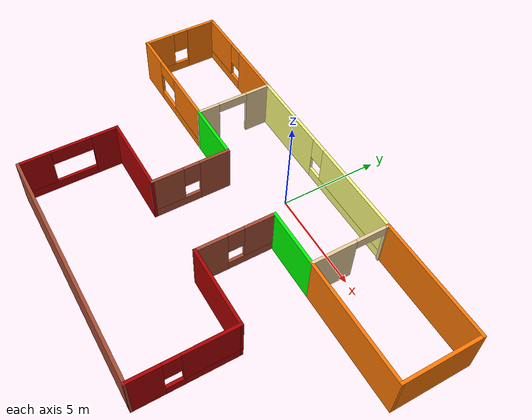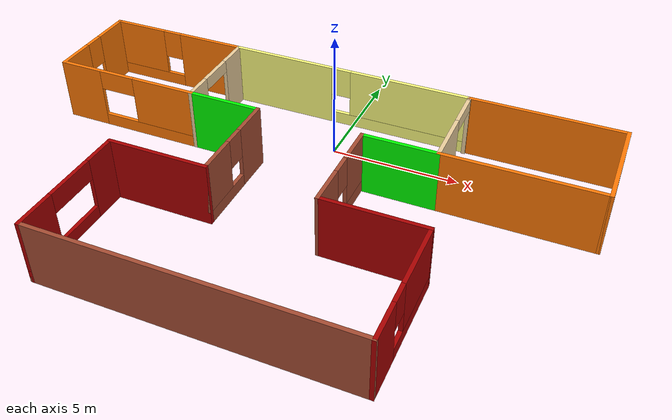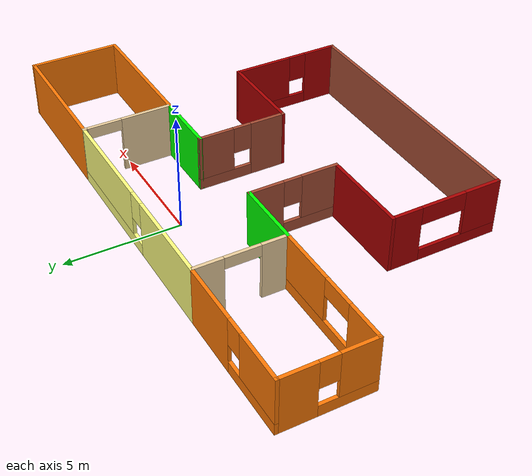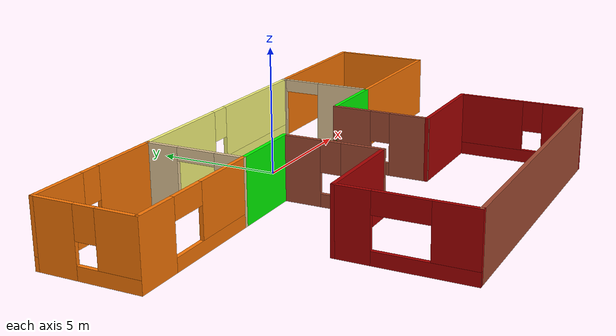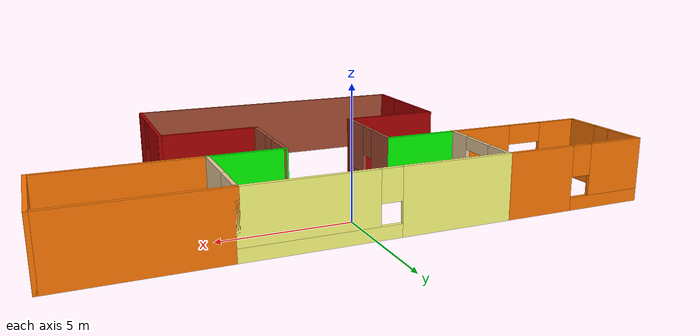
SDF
<?xml version='1.0'?>
<sdf version='1.6'>
  <model name='projectbuilding'>
    <pose frame=''>-0.250463 -4.25071 0 0 -0 0</pose>
    <link name='Wall_0'>
      <pose frame=''>0 6.2751 0 0 -0 0</pose>
      <visual name='Wall_0_Visual_0'>
        <pose frame=''>-2.85668 0 1.25 0 -0 0</pose>
        <geometry>
          <box>
            <size>4.28664 0.15 2.5</size>
          </box>
        </geometry>
        <material>
          <script>
            <uri>file://media/materials/scripts/gazebo.material</uri>
            <name>Gazebo/Grey</name>
          </script>
          <ambient>1 1 0.498039 1</ambient>
        </material>
        <meta>
          <layer>0</layer>
        </meta>
      </visual>
      <collision name='Wall_0_Collision_0'>
        <geometry>
          <box>
            <size>4.28664 0.15 2.5</size>
          </box>
        </geometry>
        <pose frame=''>-2.85668 0 1.25 0 -0 0</pose>
      </collision>
      <visual name='Wall_0_Visual_1'>
        <pose frame=''>2.14332 0 0.25 0 -0 0</pose>
        <geometry>
          <box>
            <size>5.71336 0.15 0.5</size>
          </box>
        </geometry>
        <material>
          <script>
            <uri>file://media/materials/scripts/gazebo.material</uri>
            <name>Gazebo/Grey</name>
          </script>
          <ambient>1 1 0.498039 1</ambient>
        </material>
        <meta>
          <layer>0</layer>
        </meta>
      </visual>
      <collision name='Wall_0_Collision_1'>
        <geometry>
          <box>
            <size>5.71336 0.15 0.5</size>
          </box>
        </geometry>
        <pose frame=''>2.14332 0 0.25 0 -0 0</pose>
      </collision>
      <visual name='Wall_0_Visual_2'>
        <pose frame=''>2.54332 0 1.5 0 -0 0</pose>
        <geometry>
          <box>
            <size>4.91336 0.15 2</size>
          </box>
        </geometry>
        <material>
          <script>
            <uri>file://media/materials/scripts/gazebo.material</uri>
            <name>Gazebo/Grey</name>
          </script>
          <ambient>1 1 0.498039 1</ambient>
        </material>
        <meta>
          <layer>0</layer>
        </meta>
      </visual>
      <collision name='Wall_0_Collision_2'>
        <geometry>
          <box>
            <size>4.91336 0.15 2</size>
          </box>
        </geometry>
        <pose frame=''>2.54332 0 1.5 0 -0 0</pose>
      </collision>
      <visual name='Wall_0_Visual_3'>
        <pose frame=''>-0.31336 0 1.9 0 -0 0</pose>
        <geometry>
          <box>
            <size>0.8 0.15 1.2</size>
          </box>
        </geometry>
        <material>
          <script>
            <uri>file://media/materials/scripts/gazebo.material</uri>
            <name>Gazebo/Grey</name>
          </script>
          <ambient>1 1 0.498039 1</ambient>
        </material>
        <meta>
          <layer>0</layer>
        </meta>
      </visual>
      <collision name='Wall_0_Collision_3'>
        <geometry>
          <box>
            <size>0.8 0.15 1.2</size>
          </box>
        </geometry>
        <pose frame=''>-0.31336 0 1.9 0 -0 0</pose>
      </collision>
    </link>
    <link name='Wall_16'>
      <pose frame=''>-4.925 4.3501 0 0 0 -1.5708</pose>
      <visual name='Wall_16_Visual_0'>
        <pose frame=''>-1.33475 0 1.25 0 -0 0</pose>
        <geometry>
          <box>
            <size>1.33049 0.15 2.5</size>
          </box>
        </geometry>
        <material>
          <script>
            <uri>file://media/materials/scripts/gazebo.material</uri>
            <name>Gazebo/Grey</name>
          </script>
          <ambient>0.921569 0.807843 0.615686 1</ambient>
        </material>
        <meta>
          <layer>0</layer>
        </meta>
      </visual>
      <collision name='Wall_16_Collision_0'>
        <geometry>
          <box>
            <size>1.33049 0.15 2.5</size>
          </box>
        </geometry>
        <pose frame=''>-1.33475 0 1.25 0 -0 0</pose>
      </collision>
      <visual name='Wall_16_Visual_1'>
        <pose frame=''>1.41525 0 1.25 0 -0 0</pose>
        <geometry>
          <box>
            <size>1.16951 0.15 2.5</size>
          </box>
        </geometry>
        <material>
          <script>
            <uri>file://media/materials/scripts/gazebo.material</uri>
            <name>Gazebo/Grey</name>
          </script>
          <ambient>0.921569 0.807843 0.615686 1</ambient>
        </material>
        <meta>
          <layer>0</layer>
        </meta>
      </visual>
      <collision name='Wall_16_Collision_1'>
        <geometry>
          <box>
            <size>1.16951 0.15 2.5</size>
          </box>
        </geometry>
        <pose frame=''>1.41525 0 1.25 0 -0 0</pose>
      </collision>
      <visual name='Wall_16_Visual_2'>
        <pose frame=''>0.080495 0 2.25 0 -0 0</pose>
        <geometry>
          <box>
            <size>1.5 0.15 0.5</size>
          </box>
        </geometry>
        <material>
          <script>
            <uri>file://media/materials/scripts/gazebo.material</uri>
            <name>Gazebo/Grey</name>
          </script>
          <ambient>0.921569 0.807843 0.615686 1</ambient>
        </material>
        <meta>
          <layer>0</layer>
        </meta>
      </visual>
      <collision name='Wall_16_Collision_2'>
        <geometry>
          <box>
            <size>1.5 0.15 0.5</size>
          </box>
        </geometry>
        <pose frame=''>0.080495 0 2.25 0 -0 0</pose>
      </collision>
    </link>
    <link name='Wall_17'>
      <collision name='Wall_17_Collision'>
        <geometry>
          <box>
            <size>3 0.15 2.5</size>
          </box>
        </geometry>
        <pose frame=''>0 0 1.25 0 -0 0</pose>
      </collision>
      <visual name='Wall_17_Visual'>
        <pose frame=''>0 0 1.25 0 -0 0</pose>
        <geometry>
          <box>
            <size>3 0.15 2.5</size>
          </box>
        </geometry>
        <material>
          <script>
            <uri>file://media/materials/scripts/gazebo.material</uri>
            <name>Gazebo/Grey</name>
          </script>
          <ambient>0 1 0 1</ambient>
        </material>
        <meta>
          <layer>0</layer>
        </meta>
      </visual>
      <pose frame=''>-3.5 2.4251 0 0 -0 0</pose>
    </link>
    <link name='Wall_19'>
      <pose frame=''>4.925 4.3501 0 0 0 -1.5708</pose>
      <visual name='Wall_19_Visual_0'>
        <pose frame=''>-1.89121 0 1.25 0 -0 0</pose>
        <geometry>
          <box>
            <size>0.217577 0.15 2.5</size>
          </box>
        </geometry>
        <material>
          <script>
            <uri>file://media/materials/scripts/gazebo.material</uri>
            <name>Gazebo/Grey</name>
          </script>
          <ambient>0.921569 0.807843 0.615686 1</ambient>
        </material>
        <meta>
          <layer>0</layer>
        </meta>
      </visual>
      <collision name='Wall_19_Collision_0'>
        <geometry>
          <box>
            <size>0.217577 0.15 2.5</size>
          </box>
        </geometry>
        <pose frame=''>-1.89121 0 1.25 0 -0 0</pose>
      </collision>
      <visual name='Wall_19_Visual_1'>
        <pose frame=''>0.858788 0 1.25 0 -0 0</pose>
        <geometry>
          <box>
            <size>2.28242 0.15 2.5</size>
          </box>
        </geometry>
        <material>
          <script>
            <uri>file://media/materials/scripts/gazebo.material</uri>
            <name>Gazebo/Grey</name>
          </script>
          <ambient>0.921569 0.807843 0.615686 1</ambient>
        </material>
        <meta>
          <layer>0</layer>
        </meta>
      </visual>
      <collision name='Wall_19_Collision_1'>
        <geometry>
          <box>
            <size>2.28242 0.15 2.5</size>
          </box>
        </geometry>
        <pose frame=''>0.858788 0 1.25 0 -0 0</pose>
      </collision>
      <visual name='Wall_19_Visual_2'>
        <pose frame=''>-1.03242 0 2.25 0 -0 0</pose>
        <geometry>
          <box>
            <size>1.5 0.15 0.5</size>
          </box>
        </geometry>
        <material>
          <script>
            <uri>file://media/materials/scripts/gazebo.material</uri>
            <name>Gazebo/Grey</name>
          </script>
          <ambient>0.921569 0.807843 0.615686 1</ambient>
        </material>
        <meta>
          <layer>0</layer>
        </meta>
      </visual>
      <collision name='Wall_19_Collision_2'>
        <geometry>
          <box>
            <size>1.5 0.15 0.5</size>
          </box>
        </geometry>
        <pose frame=''>-1.03242 0 2.25 0 -0 0</pose>
      </collision>
    </link>
    <link name='Wall_20'>
      <collision name='Wall_20_Collision'>
        <geometry>
          <box>
            <size>3 0.15 2.5</size>
          </box>
        </geometry>
        <pose frame=''>0 0 1.25 0 -0 0</pose>
      </collision>
      <visual name='Wall_20_Visual'>
        <pose frame=''>0 0 1.25 0 -0 0</pose>
        <geometry>
          <box>
            <size>3 0.15 2.5</size>
          </box>
        </geometry>
        <material>
          <script>
            <uri>file://media/materials/scripts/gazebo.material</uri>
            <name>Gazebo/Grey</name>
          </script>
          <ambient>0 1 0 1</ambient>
        </material>
        <meta>
          <layer>0</layer>
        </meta>
      </visual>
      <pose frame=''>3.5 2.4251 0 0 -0 3.14159</pose>
    </link>
    <link name='Wall_44'>
      <pose frame=''>-2.075 0.5001 0 0 0 -1.5708</pose>
      <visual name='Wall_44_Visual_0'>
        <pose frame=''>-1.22523 0 1.25 0 -0 0</pose>
        <geometry>
          <box>
            <size>1.54953 0.15 2.5</size>
          </box>
        </geometry>
        <material>
          <script>
            <uri>file://media/materials/scripts/gazebo.material</uri>
            <name>Gazebo/Bricks</name>
          </script>
          <ambient>0 0.333333 0 1</ambient>
        </material>
        <meta>
          <layer>0</layer>
        </meta>
      </visual>
      <collision name='Wall_44_Collision_0'>
        <geometry>
          <box>
            <size>1.54953 0.15 2.5</size>
          </box>
        </geometry>
        <pose frame=''>-1.22523 0 1.25 0 -0 0</pose>
      </collision>
      <visual name='Wall_44_Visual_1'>
        <pose frame=''>0.774766 0 0.25 0 -0 0</pose>
        <geometry>
          <box>
            <size>2.45047 0.15 0.5</size>
          </box>
        </geometry>
        <material>
          <script>
            <uri>file://media/materials/scripts/gazebo.material</uri>
            <name>Gazebo/Bricks</name>
          </script>
          <ambient>0 0.333333 0 1</ambient>
        </material>
        <meta>
          <layer>0</layer>
        </meta>
      </visual>
      <collision name='Wall_44_Collision_1'>
        <geometry>
          <box>
            <size>2.45047 0.15 0.5</size>
          </box>
        </geometry>
        <pose frame=''>0.774766 0 0.25 0 -0 0</pose>
      </collision>
      <visual name='Wall_44_Visual_2'>
        <pose frame=''>1.17477 0 1.5 0 -0 0</pose>
        <geometry>
          <box>
            <size>1.65047 0.15 2</size>
          </box>
        </geometry>
        <material>
          <script>
            <uri>file://media/materials/scripts/gazebo.material</uri>
            <name>Gazebo/Bricks</name>
          </script>
          <ambient>0 0.333333 0 1</ambient>
        </material>
        <meta>
          <layer>0</layer>
        </meta>
      </visual>
      <collision name='Wall_44_Collision_2'>
        <geometry>
          <box>
            <size>1.65047 0.15 2</size>
          </box>
        </geometry>
        <pose frame=''>1.17477 0 1.5 0 -0 0</pose>
      </collision>
      <visual name='Wall_44_Visual_3'>
        <pose frame=''>-0.050468 0 1.9 0 -0 0</pose>
        <geometry>
          <box>
            <size>0.8 0.15 1.2</size>
          </box>
        </geometry>
        <material>
          <script>
            <uri>file://media/materials/scripts/gazebo.material</uri>
            <name>Gazebo/Bricks</name>
          </script>
          <ambient>0 0.333333 0 1</ambient>
        </material>
        <meta>
          <layer>0</layer>
        </meta>
      </visual>
      <collision name='Wall_44_Collision_3'>
        <geometry>
          <box>
            <size>0.8 0.15 1.2</size>
          </box>
        </geometry>
        <pose frame=''>-0.050468 0 1.9 0 -0 0</pose>
      </collision>
    </link>
    <link name='Wall_45'>
      <collision name='Wall_45_Collision'>
        <geometry>
          <box>
            <size>4 0.15 2.5</size>
          </box>
        </geometry>
        <pose frame=''>0 0 1.25 0 -0 0</pose>
      </collision>
      <visual name='Wall_45_Visual'>
        <pose frame=''>0 0 1.25 0 -0 0</pose>
        <geometry>
          <box>
            <size>4 0.15 2.5</size>
          </box>
        </geometry>
        <material>
          <script>
            <uri>file://media/materials/scripts/gazebo.material</uri>
            <name>Gazebo/Grey</name>
          </script>
          <ambient>0.666667 0 0 1</ambient>
        </material>
        <meta>
          <layer>0</layer>
        </meta>
      </visual>
      <pose frame=''>-4 -1.4249 0 0 -0 3.14159</pose>
    </link>
    <link name='Wall_46'>
      <pose frame=''>-5.925 -3.8499 0 0 0 -1.5708</pose>
      <visual name='Wall_46_Visual_0'>
        <pose frame=''>-1.81013 0 1.25 0 -0 0</pose>
        <geometry>
          <box>
            <size>1.37973 0.15 2.5</size>
          </box>
        </geometry>
        <material>
          <script>
            <uri>file://media/materials/scripts/gazebo.material</uri>
            <name>Gazebo/Grey</name>
          </script>
          <ambient>0.666667 0 0 1</ambient>
        </material>
        <meta>
          <layer>0</layer>
        </meta>
      </visual>
      <collision name='Wall_46_Collision_0'>
        <geometry>
          <box>
            <size>1.37973 0.15 2.5</size>
          </box>
        </geometry>
        <pose frame=''>-1.81013 0 1.25 0 -0 0</pose>
      </collision>
      <visual name='Wall_46_Visual_1'>
        <pose frame=''>0.689866 0 0.25 0 -0 0</pose>
        <geometry>
          <box>
            <size>3.62027 0.15 0.5</size>
          </box>
        </geometry>
        <material>
          <script>
            <uri>file://media/materials/scripts/gazebo.material</uri>
            <name>Gazebo/Grey</name>
          </script>
          <ambient>0.666667 0 0 1</ambient>
        </material>
        <meta>
          <layer>0</layer>
        </meta>
      </visual>
      <collision name='Wall_46_Collision_1'>
        <geometry>
          <box>
            <size>3.62027 0.15 0.5</size>
          </box>
        </geometry>
        <pose frame=''>0.689866 0 0.25 0 -0 0</pose>
      </collision>
      <visual name='Wall_46_Visual_2'>
        <pose frame=''>1.68987 0 1.5 0 -0 0</pose>
        <geometry>
          <box>
            <size>1.62027 0.15 2</size>
          </box>
        </geometry>
        <material>
          <script>
            <uri>file://media/materials/scripts/gazebo.material</uri>
            <name>Gazebo/Grey</name>
          </script>
          <ambient>0.666667 0 0 1</ambient>
        </material>
        <meta>
          <layer>0</layer>
        </meta>
      </visual>
      <collision name='Wall_46_Collision_2'>
        <geometry>
          <box>
            <size>1.62027 0.15 2</size>
          </box>
        </geometry>
        <pose frame=''>1.68987 0 1.5 0 -0 0</pose>
      </collision>
      <visual name='Wall_46_Visual_3'>
        <pose frame=''>-0.120268 0 2.1 0 -0 0</pose>
        <geometry>
          <box>
            <size>2 0.15 0.8</size>
          </box>
        </geometry>
        <material>
          <script>
            <uri>file://media/materials/scripts/gazebo.material</uri>
            <name>Gazebo/Grey</name>
          </script>
          <ambient>0.666667 0 0 1</ambient>
        </material>
        <meta>
          <layer>0</layer>
        </meta>
      </visual>
      <collision name='Wall_46_Collision_3'>
        <geometry>
          <box>
            <size>2 0.15 0.8</size>
          </box>
        </geometry>
        <pose frame=''>-0.120268 0 2.1 0 -0 0</pose>
      </collision>
    </link>
    <link name='Wall_52'>
      <collision name='Wall_52_Collision'>
        <geometry>
          <box>
            <size>12 0.15 2.5</size>
          </box>
        </geometry>
        <pose frame=''>0 0 1.25 0 -0 0</pose>
      </collision>
      <visual name='Wall_52_Visual'>
        <pose frame=''>0 0 1.25 0 -0 0</pose>
        <geometry>
          <box>
            <size>12 0.15 2.5</size>
          </box>
        </geometry>
        <material>
          <script>
            <uri>file://media/materials/scripts/gazebo.material</uri>
            <name>Gazebo/Bricks</name>
          </script>
          <ambient>0.666667 0 0 1</ambient>
        </material>
        <meta>
          <layer>0</layer>
        </meta>
      </visual>
      <pose frame=''>0 -6.2749 0 0 -0 0</pose>
    </link>
    <link name='Wall_54'>
      <pose frame=''>5.92523 -3.85009 0 0 -0 1.5707</pose>
      <visual name='Wall_54_Visual_0'>
        <pose frame=''>-1.72268 0 1.25 0 -0 0</pose>
        <geometry>
          <box>
            <size>1.55464 0.15 2.5</size>
          </box>
        </geometry>
        <material>
          <script>
            <uri>file://media/materials/scripts/gazebo.material</uri>
            <name>Gazebo/Grey</name>
          </script>
          <ambient>0.666667 0 0 1</ambient>
        </material>
        <meta>
          <layer>0</layer>
        </meta>
      </visual>
      <collision name='Wall_54_Collision_0'>
        <geometry>
          <box>
            <size>1.55464 0.15 2.5</size>
          </box>
        </geometry>
        <pose frame=''>-1.72268 0 1.25 0 -0 0</pose>
      </collision>
      <visual name='Wall_54_Visual_1'>
        <pose frame=''>0.777321 0 0.25 0 -0 0</pose>
        <geometry>
          <box>
            <size>3.44536 0.15 0.5</size>
          </box>
        </geometry>
        <material>
          <script>
            <uri>file://media/materials/scripts/gazebo.material</uri>
            <name>Gazebo/Grey</name>
          </script>
          <ambient>0.666667 0 0 1</ambient>
        </material>
        <meta>
          <layer>0</layer>
        </meta>
      </visual>
      <collision name='Wall_54_Collision_1'>
        <geometry>
          <box>
            <size>3.44536 0.15 0.5</size>
          </box>
        </geometry>
        <pose frame=''>0.777321 0 0.25 0 -0 0</pose>
      </collision>
      <visual name='Wall_54_Visual_2'>
        <pose frame=''>1.17732 0 1.5 0 -0 0</pose>
        <geometry>
          <box>
            <size>2.64536 0.15 2</size>
          </box>
        </geometry>
        <material>
          <script>
            <uri>file://media/materials/scripts/gazebo.material</uri>
            <name>Gazebo/Grey</name>
          </script>
          <ambient>0.666667 0 0 1</ambient>
        </material>
        <meta>
          <layer>0</layer>
        </meta>
      </visual>
      <collision name='Wall_54_Collision_2'>
        <geometry>
          <box>
            <size>2.64536 0.15 2</size>
          </box>
        </geometry>
        <pose frame=''>1.17732 0 1.5 0 -0 0</pose>
      </collision>
      <visual name='Wall_54_Visual_3'>
        <pose frame=''>-0.545359 0 1.9 0 -0 0</pose>
        <geometry>
          <box>
            <size>0.8 0.15 1.2</size>
          </box>
        </geometry>
        <material>
          <script>
            <uri>file://media/materials/scripts/gazebo.material</uri>
            <name>Gazebo/Grey</name>
          </script>
          <ambient>0.666667 0 0 1</ambient>
        </material>
        <meta>
          <layer>0</layer>
        </meta>
      </visual>
      <collision name='Wall_54_Collision_3'>
        <geometry>
          <box>
            <size>0.8 0.15 1.2</size>
          </box>
        </geometry>
        <pose frame=''>-0.545359 0 1.9 0 -0 0</pose>
      </collision>
    </link>
    <link name='Wall_56'>
      <collision name='Wall_56_Collision'>
        <geometry>
          <box>
            <size>4 0.15 2.5</size>
          </box>
        </geometry>
        <pose frame=''>0 0 1.25 0 -0 0</pose>
      </collision>
      <visual name='Wall_56_Visual'>
        <pose frame=''>0 0 1.25 0 -0 0</pose>
        <geometry>
          <box>
            <size>4 0.15 2.5</size>
          </box>
        </geometry>
        <material>
          <script>
            <uri>file://media/materials/scripts/gazebo.material</uri>
            <name>Gazebo/Grey</name>
          </script>
          <ambient>0.666667 0 0 1</ambient>
        </material>
        <meta>
          <layer>0</layer>
        </meta>
      </visual>
      <pose frame=''>4.00046 -1.42529 0 0 -0 3.14159</pose>
    </link>
    <link name='Wall_58'>
      <pose frame=''>2.07523 0.499906 0 0 -0 1.57092</pose>
      <visual name='Wall_58_Visual_0'>
        <pose frame=''>-1.19803 0 1.25 0 -0 0</pose>
        <geometry>
          <box>
            <size>1.60433 0.15 2.5</size>
          </box>
        </geometry>
        <material>
          <script>
            <uri>file://media/materials/scripts/gazebo.material</uri>
            <name>Gazebo/Bricks</name>
          </script>
          <ambient>0 0.333333 0 1</ambient>
        </material>
        <meta>
          <layer>0</layer>
        </meta>
      </visual>
      <collision name='Wall_58_Collision_0'>
        <geometry>
          <box>
            <size>1.60433 0.15 2.5</size>
          </box>
        </geometry>
        <pose frame=''>-1.19803 0 1.25 0 -0 0</pose>
      </collision>
      <visual name='Wall_58_Visual_1'>
        <pose frame=''>0.802167 0 0.25 0 -0 0</pose>
        <geometry>
          <box>
            <size>2.39606 0.15 0.5</size>
          </box>
        </geometry>
        <material>
          <script>
            <uri>file://media/materials/scripts/gazebo.material</uri>
            <name>Gazebo/Bricks</name>
          </script>
          <ambient>0 0.333333 0 1</ambient>
        </material>
        <meta>
          <layer>0</layer>
        </meta>
      </visual>
      <collision name='Wall_58_Collision_1'>
        <geometry>
          <box>
            <size>2.39606 0.15 0.5</size>
          </box>
        </geometry>
        <pose frame=''>0.802167 0 0.25 0 -0 0</pose>
      </collision>
      <visual name='Wall_58_Visual_2'>
        <pose frame=''>1.20217 0 1.5 0 -0 0</pose>
        <geometry>
          <box>
            <size>1.59606 0.15 2</size>
          </box>
        </geometry>
        <material>
          <script>
            <uri>file://media/materials/scripts/gazebo.material</uri>
            <name>Gazebo/Bricks</name>
          </script>
          <ambient>0 0.333333 0 1</ambient>
        </material>
        <meta>
          <layer>0</layer>
        </meta>
      </visual>
      <collision name='Wall_58_Collision_2'>
        <geometry>
          <box>
            <size>1.59606 0.15 2</size>
          </box>
        </geometry>
        <pose frame=''>1.20217 0 1.5 0 -0 0</pose>
      </collision>
      <visual name='Wall_58_Visual_3'>
        <pose frame=''>0.004139 0 1.9 0 -0 0</pose>
        <geometry>
          <box>
            <size>0.8 0.15 1.2</size>
          </box>
        </geometry>
        <material>
          <script>
            <uri>file://media/materials/scripts/gazebo.material</uri>
            <name>Gazebo/Bricks</name>
          </script>
          <ambient>0 0.333333 0 1</ambient>
        </material>
        <meta>
          <layer>0</layer>
        </meta>
      </visual>
      <collision name='Wall_58_Collision_3'>
        <geometry>
          <box>
            <size>0.8 0.15 1.2</size>
          </box>
        </geometry>
        <pose frame=''>0.004139 0 1.9 0 -0 0</pose>
      </collision>
    </link>
    <link name='Wall_60'>
      <collision name='Wall_60_Collision'>
        <geometry>
          <box>
            <size>6 0.15 2.5</size>
          </box>
        </geometry>
        <pose frame=''>0 0 1.25 0 -0 0</pose>
      </collision>
      <visual name='Wall_60_Visual'>
        <pose frame=''>0 0 1.25 0 -0 0</pose>
        <geometry>
          <box>
            <size>6 0.15 2.5</size>
          </box>
        </geometry>
        <material>
          <script>
            <uri>file://media/materials/scripts/gazebo.material</uri>
            <name>Gazebo/Grey</name>
          </script>
          <ambient>0.996078 0.47451 0.0196078 1</ambient>
        </material>
        <meta>
          <layer>0</layer>
        </meta>
      </visual>
      <pose frame=''>7.85 6.2751 0 0 -0 0</pose>
    </link>
    <link name='Wall_62'>
      <collision name='Wall_62_Collision'>
        <geometry>
          <box>
            <size>4 0.15 2.5</size>
          </box>
        </geometry>
        <pose frame=''>0 0 1.25 0 -0 0</pose>
      </collision>
      <visual name='Wall_62_Visual'>
        <pose frame=''>0 0 1.25 0 -0 0</pose>
        <geometry>
          <box>
            <size>4 0.15 2.5</size>
          </box>
        </geometry>
        <material>
          <script>
            <uri>file://media/materials/scripts/gazebo.material</uri>
            <name>Gazebo/Grey</name>
          </script>
          <ambient>0.996078 0.47451 0.0196078 1</ambient>
        </material>
        <meta>
          <layer>0</layer>
        </meta>
      </visual>
      <pose frame=''>10.775 4.3501 0 0 0 -1.5708</pose>
    </link>
    <link name='Wall_64'>
      <collision name='Wall_64_Collision'>
        <geometry>
          <box>
            <size>6 0.15 2.5</size>
          </box>
        </geometry>
        <pose frame=''>0 0 1.25 0 -0 0</pose>
      </collision>
      <visual name='Wall_64_Visual'>
        <pose frame=''>0 0 1.25 0 -0 0</pose>
        <geometry>
          <box>
            <size>6 0.15 2.5</size>
          </box>
        </geometry>
        <material>
          <script>
            <uri>file://media/materials/scripts/gazebo.material</uri>
            <name>Gazebo/Grey</name>
          </script>
          <ambient>0.996078 0.47451 0.0196078 1</ambient>
        </material>
        <meta>
          <layer>0</layer>
        </meta>
      </visual>
      <pose frame=''>7.85 2.4251 0 0 -0 0</pose>
    </link>
    <link name='Wall_66'>
      <pose frame=''>-7.85 6.2751 0 0 -0 3.14159</pose>
      <visual name='Wall_66_Visual_0'>
        <pose frame=''>-1.57139 0 1.25 0 -0 0</pose>
        <geometry>
          <box>
            <size>2.85722 0.15 2.5</size>
          </box>
        </geometry>
        <material>
          <script>
            <uri>file://media/materials/scripts/gazebo.material</uri>
            <name>Gazebo/Grey</name>
          </script>
          <ambient>0.996078 0.47451 0.0196078 1</ambient>
        </material>
        <meta>
          <layer>0</layer>
        </meta>
      </visual>
      <collision name='Wall_66_Collision_0'>
        <geometry>
          <box>
            <size>2.85722 0.15 2.5</size>
          </box>
        </geometry>
        <pose frame=''>-1.57139 0 1.25 0 -0 0</pose>
      </collision>
      <visual name='Wall_66_Visual_1'>
        <pose frame=''>1.42861 0 0.25 0 -0 0</pose>
        <geometry>
          <box>
            <size>3.14278 0.15 0.5</size>
          </box>
        </geometry>
        <material>
          <script>
            <uri>file://media/materials/scripts/gazebo.material</uri>
            <name>Gazebo/Grey</name>
          </script>
          <ambient>0.996078 0.47451 0.0196078 1</ambient>
        </material>
        <meta>
          <layer>0</layer>
        </meta>
      </visual>
      <collision name='Wall_66_Collision_1'>
        <geometry>
          <box>
            <size>3.14278 0.15 0.5</size>
          </box>
        </geometry>
        <pose frame=''>1.42861 0 0.25 0 -0 0</pose>
      </collision>
      <visual name='Wall_66_Visual_2'>
        <pose frame=''>1.82861 0 1.5 0 -0 0</pose>
        <geometry>
          <box>
            <size>2.34278 0.15 2</size>
          </box>
        </geometry>
        <material>
          <script>
            <uri>file://media/materials/scripts/gazebo.material</uri>
            <name>Gazebo/Grey</name>
          </script>
          <ambient>0.996078 0.47451 0.0196078 1</ambient>
        </material>
        <meta>
          <layer>0</layer>
        </meta>
      </visual>
      <collision name='Wall_66_Collision_2'>
        <geometry>
          <box>
            <size>2.34278 0.15 2</size>
          </box>
        </geometry>
        <pose frame=''>1.82861 0 1.5 0 -0 0</pose>
      </collision>
      <visual name='Wall_66_Visual_3'>
        <pose frame=''>0.257217 0 1.9 0 -0 0</pose>
        <geometry>
          <box>
            <size>0.8 0.15 1.2</size>
          </box>
        </geometry>
        <material>
          <script>
            <uri>file://media/materials/scripts/gazebo.material</uri>
            <name>Gazebo/Grey</name>
          </script>
          <ambient>0.996078 0.47451 0.0196078 1</ambient>
        </material>
        <meta>
          <layer>0</layer>
        </meta>
      </visual>
      <collision name='Wall_66_Collision_3'>
        <geometry>
          <box>
            <size>0.8 0.15 1.2</size>
          </box>
        </geometry>
        <pose frame=''>0.257217 0 1.9 0 -0 0</pose>
      </collision>
    </link>
    <link name='Wall_68'>
      <pose frame=''>-10.775 4.3501 0 0 0 -1.5708</pose>
      <visual name='Wall_68_Visual_0'>
        <pose frame=''>-1.1893 0 1.25 0 -0 0</pose>
        <geometry>
          <box>
            <size>1.62141 0.15 2.5</size>
          </box>
        </geometry>
        <material>
          <script>
            <uri>file://media/materials/scripts/gazebo.material</uri>
            <name>Gazebo/Grey</name>
          </script>
          <ambient>0.996078 0.47451 0.0196078 1</ambient>
        </material>
        <meta>
          <layer>0</layer>
        </meta>
      </visual>
      <collision name='Wall_68_Collision_0'>
        <geometry>
          <box>
            <size>1.62141 0.15 2.5</size>
          </box>
        </geometry>
        <pose frame=''>-1.1893 0 1.25 0 -0 0</pose>
      </collision>
      <visual name='Wall_68_Visual_1'>
        <pose frame=''>0.810704 0 0.25 0 -0 0</pose>
        <geometry>
          <box>
            <size>2.37859 0.15 0.5</size>
          </box>
        </geometry>
        <material>
          <script>
            <uri>file://media/materials/scripts/gazebo.material</uri>
            <name>Gazebo/Grey</name>
          </script>
          <ambient>0.996078 0.47451 0.0196078 1</ambient>
        </material>
        <meta>
          <layer>0</layer>
        </meta>
      </visual>
      <collision name='Wall_68_Collision_1'>
        <geometry>
          <box>
            <size>2.37859 0.15 0.5</size>
          </box>
        </geometry>
        <pose frame=''>0.810704 0 0.25 0 -0 0</pose>
      </collision>
      <visual name='Wall_68_Visual_2'>
        <pose frame=''>1.2107 0 1.5 0 -0 0</pose>
        <geometry>
          <box>
            <size>1.57859 0.15 2</size>
          </box>
        </geometry>
        <material>
          <script>
            <uri>file://media/materials/scripts/gazebo.material</uri>
            <name>Gazebo/Grey</name>
          </script>
          <ambient>0.996078 0.47451 0.0196078 1</ambient>
        </material>
        <meta>
          <layer>0</layer>
        </meta>
      </visual>
      <collision name='Wall_68_Collision_2'>
        <geometry>
          <box>
            <size>1.57859 0.15 2</size>
          </box>
        </geometry>
        <pose frame=''>1.2107 0 1.5 0 -0 0</pose>
      </collision>
      <visual name='Wall_68_Visual_3'>
        <pose frame=''>0.021408 0 1.9 0 -0 0</pose>
        <geometry>
          <box>
            <size>0.8 0.15 1.2</size>
          </box>
        </geometry>
        <material>
          <script>
            <uri>file://media/materials/scripts/gazebo.material</uri>
            <name>Gazebo/Grey</name>
          </script>
          <ambient>0.996078 0.47451 0.0196078 1</ambient>
        </material>
        <meta>
          <layer>0</layer>
        </meta>
      </visual>
      <collision name='Wall_68_Collision_3'>
        <geometry>
          <box>
            <size>0.8 0.15 1.2</size>
          </box>
        </geometry>
        <pose frame=''>0.021408 0 1.9 0 -0 0</pose>
      </collision>
    </link>
    <link name='Wall_70'>
      <pose frame=''>-7.85 2.4251 0 0 -0 0</pose>
      <visual name='Wall_70_Visual_0'>
        <pose frame=''>-2.09671 0 1.25 0 -0 0</pose>
        <geometry>
          <box>
            <size>1.80658 0.15 2.5</size>
          </box>
        </geometry>
        <material>
          <script>
            <uri>file://media/materials/scripts/gazebo.material</uri>
            <name>Gazebo/Grey</name>
          </script>
          <ambient>0.996078 0.47451 0.0196078 1</ambient>
        </material>
        <meta>
          <layer>0</layer>
        </meta>
      </visual>
      <collision name='Wall_70_Collision_0'>
        <geometry>
          <box>
            <size>1.80658 0.15 2.5</size>
          </box>
        </geometry>
        <pose frame=''>-2.09671 0 1.25 0 -0 0</pose>
      </collision>
      <visual name='Wall_70_Visual_1'>
        <pose frame=''>0.903291 0 0.25 0 -0 0</pose>
        <geometry>
          <box>
            <size>4.19342 0.15 0.5</size>
          </box>
        </geometry>
        <material>
          <script>
            <uri>file://media/materials/scripts/gazebo.material</uri>
            <name>Gazebo/Grey</name>
          </script>
          <ambient>0.996078 0.47451 0.0196078 1</ambient>
        </material>
        <meta>
          <layer>0</layer>
        </meta>
      </visual>
      <collision name='Wall_70_Collision_1'>
        <geometry>
          <box>
            <size>4.19342 0.15 0.5</size>
          </box>
        </geometry>
        <pose frame=''>0.903291 0 0.25 0 -0 0</pose>
      </collision>
      <visual name='Wall_70_Visual_2'>
        <pose frame=''>1.65329 0 1.5 0 -0 0</pose>
        <geometry>
          <box>
            <size>2.69342 0.15 2</size>
          </box>
        </geometry>
        <material>
          <script>
            <uri>file://media/materials/scripts/gazebo.material</uri>
            <name>Gazebo/Grey</name>
          </script>
          <ambient>0.996078 0.47451 0.0196078 1</ambient>
        </material>
        <meta>
          <layer>0</layer>
        </meta>
      </visual>
      <collision name='Wall_70_Collision_2'>
        <geometry>
          <box>
            <size>2.69342 0.15 2</size>
          </box>
        </geometry>
        <pose frame=''>1.65329 0 1.5 0 -0 0</pose>
      </collision>
      <visual name='Wall_70_Visual_3'>
        <pose frame=''>-0.443419 0 2.1 0 -0 0</pose>
        <geometry>
          <box>
            <size>1.5 0.15 0.8</size>
          </box>
        </geometry>
        <material>
          <script>
            <uri>file://media/materials/scripts/gazebo.material</uri>
            <name>Gazebo/Grey</name>
          </script>
          <ambient>0.996078 0.47451 0.0196078 1</ambient>
        </material>
        <meta>
          <layer>0</layer>
        </meta>
      </visual>
      <collision name='Wall_70_Collision_3'>
        <geometry>
          <box>
            <size>1.5 0.15 0.8</size>
          </box>
        </geometry>
        <pose frame=''>-0.443419 0 2.1 0 -0 0</pose>
      </collision>
    </link>
    <static>1</static>
  </model>
</sdf>
